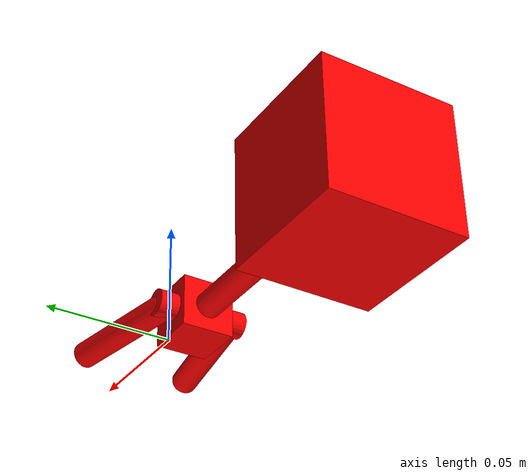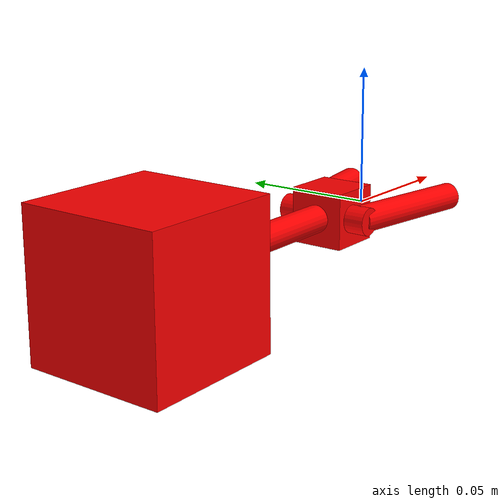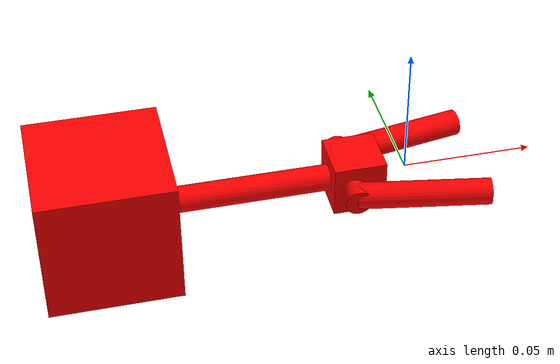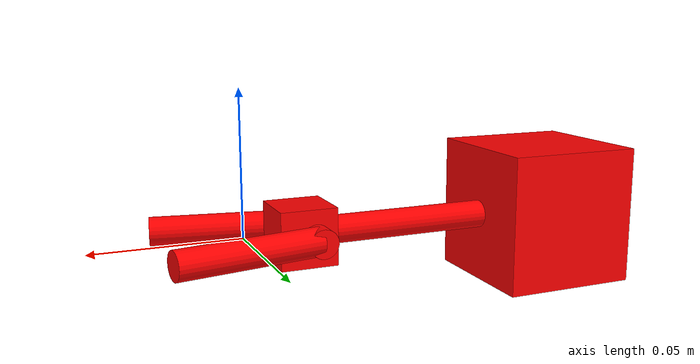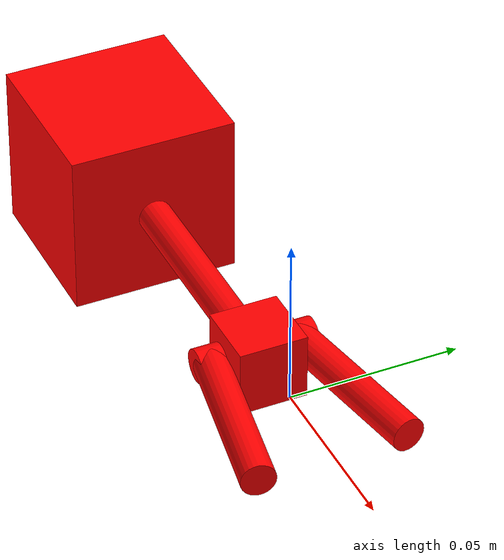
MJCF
<mujoco model="forked_probe">
  <compiler angle="radian"/>

  <worldbody>
    <geom size="0.025 0.025 0.025" pos="-0.115 0 0" type="box" rgba="1 0 0 1"/>
    <body name="probe_link" pos="-0.12 0 0">
      <inertial pos="0.0801087 0 0" quat="0 0.707107 0 0.707107" mass="0.115" diaginertia="0.0230877 0.0230846 0.0230031"/>
      <joint name="base_joint" pos="0 0 0" axis="1 0 0" type="slide"/>
      <geom size="0.005 0.05" pos="0.05 0 0" quat="0.707107 0 0.707106 0" type="cylinder" rgba="1 0 0 1"/>
      <geom size="0.01 0.01 0.01" pos="0.1 0 0" type="box" rgba="1 0 0 1"/>
      <geom size="0.005 0.0175" pos="0.0975 0 0" quat="0.707107 0.707106 0 0" type="cylinder" rgba="1 0 0 1"/>
      <geom size="0.005 0.025" pos="0.1225 0.0175 0" quat="0.704433 -0.0614407 0.704432 0.0614408" type="cylinder" rgba="1 0 0 1"/>
      <geom size="0.005 0.025" pos="0.1225 -0.0175 0" quat="0.704433 0.0614407 0.704432 -0.0614408" type="cylinder" rgba="1 0 0 1"/>
    </body>
  </worldbody>
</mujoco>
